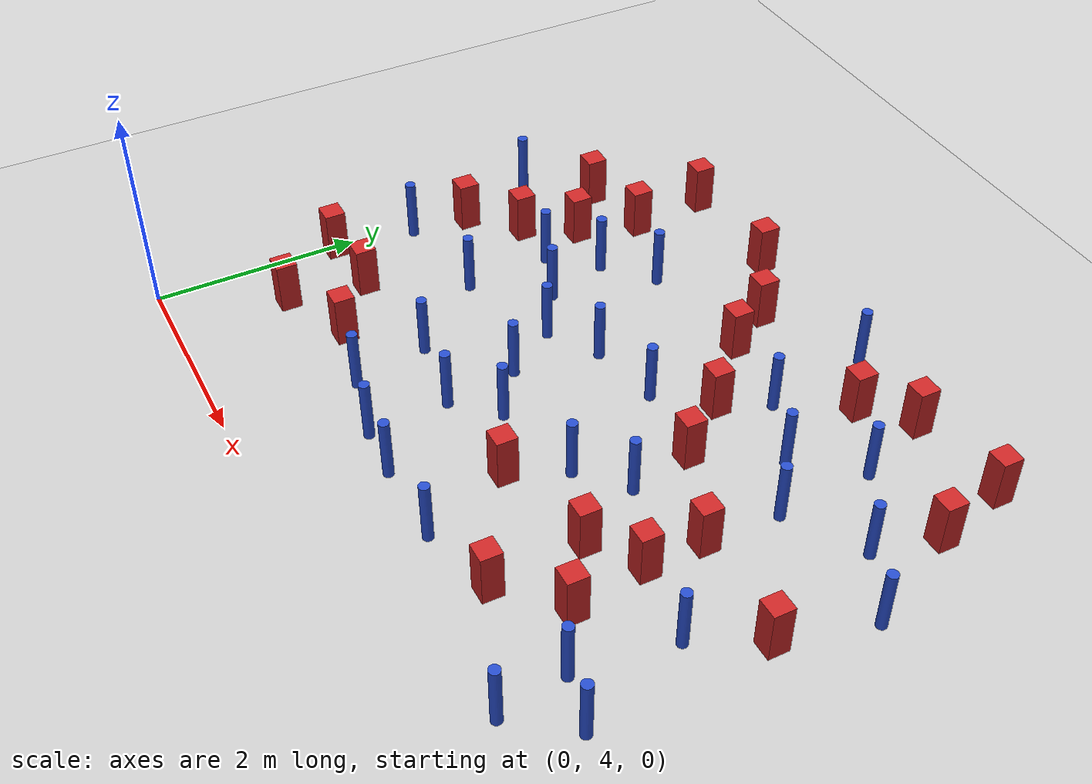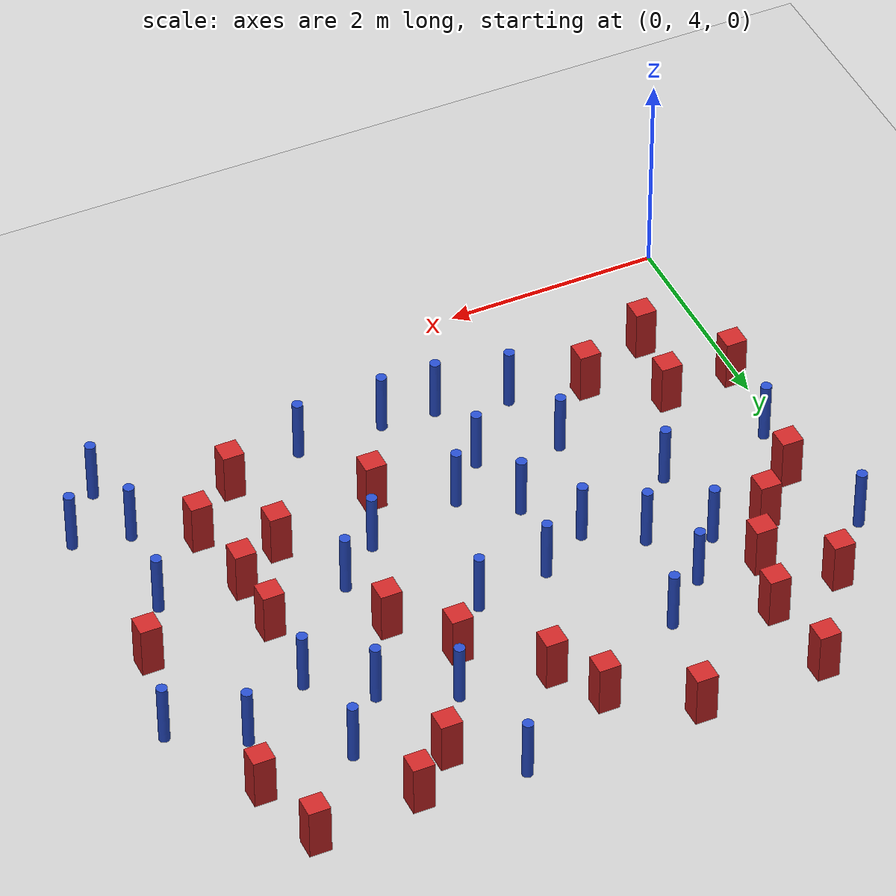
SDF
<sdf version="1.6">
 <world name="default">
  <model name="ground_plane">
   <static>1</static>
   <link name="link">
    <collision name="collision">
     <geometry><plane><normal>0 0 1</normal><size>100 100</size></plane></geometry>
     <surface><friction><ode><mu>100</mu><mu2>50</mu2></ode></friction></surface>
    </collision>
    <visual name="visual">
     <cast_shadows>0</cast_shadows>
     <geometry><plane><normal>0 0 1</normal><size>100 100</size></plane></geometry>
     <material>
      <ambient>1.0 1.0 1.0 1.0</ambient>
      <diffuse>0.8 0.8 0.8 1.0</diffuse>
      <specular>0.01 0.01 0.01 1.000000</specular>
     </material>
    </visual>
   </link>
  </model>
  <model name="pole_obstacle5">
   <static>true</static>
   <pose>3.9795930664 8.41636946074 -9.4761961606e-06 5.49618799729e-07 2.36310414e-07 -1.55090534824e-07</pose>
   <link name="link">
    <pose>0 0 0.3 0 -0 0</pose>
    <inertial>
     <mass>1</mass>
     <inertia><ixx>0.145833</ixx><ixy>0</ixy><ixz>0</ixz><iyy>0.145833</iyy><iyz>0</iyz><izz>0.125</izz></inertia>
    </inertial>
    <collision name="collision">
     <geometry><cylinder><radius>0.05</radius><length>.6</length></cylinder></geometry>
    </collision>
    <visual name="visual">
     <geometry><cylinder><radius>0.05</radius><length>.6</length></cylinder></geometry>
     <material>
      <script><name>Gazebo/Blue</name><uri>file://media/materials/scripts/gazebo.material</uri></script>
     </material>
    </visual>
   </link>
  </model>
  <model name="pole_obstacle6">
   <static>true</static>
   <pose>4.61907861726 8.1229352003 -9.47619616065e-06 5.49618799737e-07 2.36310414065e-07 -1.55090534796e-07</pose>
   <link name="link">
    <pose>0 0 0.3 0 -0 0</pose>
    <inertial>
     <mass>1</mass>
     <inertia><ixx>0.145833</ixx><ixy>0</ixy><ixz>0</ixz><iyy>0.145833</iyy><iyz>0</iyz><izz>0.125</izz></inertia>
    </inertial>
    <collision name="collision">
     <geometry><cylinder><radius>0.05</radius><length>.6</length></cylinder></geometry>
    </collision>
    <visual name="visual">
     <geometry><cylinder><radius>0.05</radius><length>.6</length></cylinder></geometry>
     <material>
      <script><name>Gazebo/Blue</name><uri>file://media/materials/scripts/gazebo.material</uri></script>
     </material>
    </visual>
   </link>
  </model>
  <model name="square_post_obstacle16">
   <static>true</static>
   <pose>4.78682053761 9.36860131413 -6.11067671241e-07 -5.50515727128e-06 -8.79689657224e-07 2.37013304536e-05</pose>
   <link name="link">
    <pose>0 0 0.25 0 -0 0</pose>
    <inertial>
     <mass>100</mass>
     <inertia>
      <ixx>0.166667</ixx>
      <ixy>0</ixy>
      <ixz>0</ixz>
      <iyy>0.166667</iyy>
      <iyz>0</iyz>
      <izz>0.166667</izz>
     </inertia>
    </inertial>
    <collision name="collision"><geometry><box><size>.2 .2 .5</size></box></geometry></collision>
    <visual name="visual">
     <geometry><box><size>.2 .2 .5</size></box></geometry>
     <material>
      <script><name>Gazebo/Red</name><uri>file://media/materials/scripts/gazebo.material</uri></script>
     </material>
    </visual>
   </link>
  </model>
  <model name="square_post_obstacle17">
   <static>true</static>
   <pose>0.948095992492 8.06252955084 -6.11067671241e-07 -5.50515727128e-06 -8.79689657224e-07 2.37013304536e-05</pose>
   <link name="link">
    <pose>0 0 0.25 0 -0 0</pose>
    <inertial>
     <mass>100</mass>
     <inertia>
      <ixx>0.166667</ixx>
      <ixy>0</ixy>
      <ixz>0</ixz>
      <iyy>0.166667</iyy>
      <iyz>0</iyz>
      <izz>0.166667</izz>
     </inertia>
    </inertial>
    <collision name="collision"><geometry><box><size>.2 .2 .5</size></box></geometry></collision>
    <visual name="visual">
     <geometry><box><size>.2 .2 .5</size></box></geometry>
     <material>
      <script><name>Gazebo/Red</name><uri>file://media/materials/scripts/gazebo.material</uri></script>
     </material>
    </visual>
   </link>
  </model>
  <model name="pole_obstacle23">
   <static>true</static>
   <pose>3.99625036072 5.07486670675 -9.47619616065e-06 5.49618799737e-07 2.36310414049e-07 -1.55090534808e-07</pose>
   <link name="link">
    <pose>0 0 0.3 0 -0 0</pose>
    <inertial>
     <mass>1</mass>
     <inertia><ixx>0.145833</ixx><ixy>0</ixy><ixz>0</ixz><iyy>0.145833</iyy><iyz>0</iyz><izz>0.125</izz></inertia>
    </inertial>
    <collision name="collision">
     <geometry><cylinder><radius>0.05</radius><length>.6</length></cylinder></geometry>
    </collision>
    <visual name="visual">
     <geometry><cylinder><radius>0.05</radius><length>.6</length></cylinder></geometry>
     <material>
      <script><name>Gazebo/Blue</name><uri>file://media/materials/scripts/gazebo.material</uri></script>
     </material>
    </visual>
   </link>
  </model>
  <model name="pole_obstacle28">
   <static>true</static>
   <pose>2.99901912875 6.23944280285 -9.47619616065e-06 5.49618799738e-07 2.3631041406e-07 -1.55090534801e-07</pose>
   <link name="link">
    <pose>0 0 0.3 0 -0 0</pose>
    <inertial>
     <mass>1</mass>
     <inertia><ixx>0.145833</ixx><ixy>0</ixy><ixz>0</ixz><iyy>0.145833</iyy><iyz>0</iyz><izz>0.125</izz></inertia>
    </inertial>
    <collision name="collision">
     <geometry><cylinder><radius>0.05</radius><length>.6</length></cylinder></geometry>
    </collision>
    <visual name="visual">
     <geometry><cylinder><radius>0.05</radius><length>.6</length></cylinder></geometry>
     <material>
      <script><name>Gazebo/Blue</name><uri>file://media/materials/scripts/gazebo.material</uri></script>
     </material>
    </visual>
   </link>
  </model>
  <model name="pole_obstacle43">
   <static>true</static>
   <pose>1.8658468753 5.97673860439 -9.47619616065e-06 5.49618799737e-07 2.36310414061e-07 -1.550905348e-07</pose>
   <link name="link">
    <pose>0 0 0.3 0 -0 0</pose>
    <inertial>
     <mass>1</mass>
     <inertia><ixx>0.145833</ixx><ixy>0</ixy><ixz>0</ixz><iyy>0.145833</iyy><iyz>0</iyz><izz>0.125</izz></inertia>
    </inertial>
    <collision name="collision">
     <geometry><cylinder><radius>0.05</radius><length>.6</length></cylinder></geometry>
    </collision>
    <visual name="visual">
     <geometry><cylinder><radius>0.05</radius><length>.6</length></cylinder></geometry>
     <material>
      <script><name>Gazebo/Blue</name><uri>file://media/materials/scripts/gazebo.material</uri></script>
     </material>
    </visual>
   </link>
  </model>
  <model name="pole_obstacle45">
   <static>true</static>
   <pose>5.11731528271 7.73372476212 -9.47619616065e-06 5.49618799737e-07 2.36310414037e-07 -1.55090534814e-07</pose>
   <link name="link">
    <pose>0 0 0.3 0 -0 0</pose>
    <inertial>
     <mass>1</mass>
     <inertia><ixx>0.145833</ixx><ixy>0</ixy><ixz>0</ixz><iyy>0.145833</iyy><iyz>0</iyz><izz>0.125</izz></inertia>
    </inertial>
    <collision name="collision">
     <geometry><cylinder><radius>0.05</radius><length>.6</length></cylinder></geometry>
    </collision>
    <visual name="visual">
     <geometry><cylinder><radius>0.05</radius><length>.6</length></cylinder></geometry>
     <material>
      <script><name>Gazebo/Blue</name><uri>file://media/materials/scripts/gazebo.material</uri></script>
     </material>
    </visual>
   </link>
  </model>
  <model name="square_post_obstacle37">
   <static>true</static>
   <pose>1.12506290742 8.65551041633 -6.11067671241e-07 -5.50515727128e-06 -8.79689657224e-07 2.37013304536e-05</pose>
   <link name="link">
    <pose>0 0 0.25 0 -0 0</pose>
    <inertial>
     <mass>100</mass>
     <inertia>
      <ixx>0.166667</ixx>
      <ixy>0</ixy>
      <ixz>0</ixz>
      <iyy>0.166667</iyy>
      <iyz>0</iyz>
      <izz>0.166667</izz>
     </inertia>
    </inertial>
    <collision name="collision"><geometry><box><size>.2 .2 .5</size></box></geometry></collision>
    <visual name="visual">
     <geometry><box><size>.2 .2 .5</size></box></geometry>
     <material>
      <script><name>Gazebo/Red</name><uri>file://media/materials/scripts/gazebo.material</uri></script>
     </material>
    </visual>
   </link>
  </model>
  <model name="square_post_obstacle39">
   <static>true</static>
   <pose>0.746380379978 5.84745701306 -6.11067671241e-07 -5.50515727128e-06 -8.79689657224e-07 2.37013304536e-05</pose>
   <link name="link">
    <pose>0 0 0.25 0 -0 0</pose>
    <inertial>
     <mass>100</mass>
     <inertia>
      <ixx>0.166667</ixx>
      <ixy>0</ixy>
      <ixz>0</ixz>
      <iyy>0.166667</iyy>
      <iyz>0</iyz>
      <izz>0.166667</izz>
     </inertia>
    </inertial>
    <collision name="collision"><geometry><box><size>.2 .2 .5</size></box></geometry></collision>
    <visual name="visual">
     <geometry><box><size>.2 .2 .5</size></box></geometry>
     <material>
      <script><name>Gazebo/Red</name><uri>file://media/materials/scripts/gazebo.material</uri></script>
     </material>
    </visual>
   </link>
  </model>
  <model name="pole_obstacle50">
   <static>true</static>
   <pose>5.79605691347 8.14460460266 -9.47619616065e-06 5.49618799737e-07 2.36310414065e-07 -1.55090534796e-07</pose>
   <link name="link">
    <pose>0 0 0.3 0 -0 0</pose>
    <inertial>
     <mass>1</mass>
     <inertia><ixx>0.145833</ixx><ixy>0</ixy><ixz>0</ixz><iyy>0.145833</iyy><iyz>0</iyz><izz>0.125</izz></inertia>
    </inertial>
    <collision name="collision">
     <geometry><cylinder><radius>0.05</radius><length>.6</length></cylinder></geometry>
    </collision>
    <visual name="visual">
     <geometry><cylinder><radius>0.05</radius><length>.6</length></cylinder></geometry>
     <material>
      <script><name>Gazebo/Blue</name><uri>file://media/materials/scripts/gazebo.material</uri></script>
     </material>
    </visual>
   </link>
  </model>
  <model name="pole_obstacle53">
   <static>true</static>
   <pose>5.86750140877 6.35401192415 -9.47619616065e-06 5.49618799737e-07 2.36310414037e-07 -1.55090534814e-07</pose>
   <link name="link">
    <pose>0 0 0.3 0 -0 0</pose>
    <inertial>
     <mass>1</mass>
     <inertia><ixx>0.145833</ixx><ixy>0</ixy><ixz>0</ixz><iyy>0.145833</iyy><iyz>0</iyz><izz>0.125</izz></inertia>
    </inertial>
    <collision name="collision">
     <geometry><cylinder><radius>0.05</radius><length>.6</length></cylinder></geometry>
    </collision>
    <visual name="visual">
     <geometry><cylinder><radius>0.05</radius><length>.6</length></cylinder></geometry>
     <material>
      <script><name>Gazebo/Blue</name><uri>file://media/materials/scripts/gazebo.material</uri></script>
     </material>
    </visual>
   </link>
  </model>
  <model name="square_post_obstacle50">
   <static>true</static>
   <pose>6.19929380088 6.94378027738 -6.11067671241e-07 -5.50515727128e-06 -8.79689657224e-07 2.37013304536e-05</pose>
   <link name="link">
    <pose>0 0 0.25 0 -0 0</pose>
    <inertial>
     <mass>100</mass>
     <inertia>
      <ixx>0.166667</ixx>
      <ixy>0</ixy>
      <ixz>0</ixz>
      <iyy>0.166667</iyy>
      <iyz>0</iyz>
      <izz>0.166667</izz>
     </inertia>
    </inertial>
    <collision name="collision"><geometry><box><size>.2 .2 .5</size></box></geometry></collision>
    <visual name="visual">
     <geometry><box><size>.2 .2 .5</size></box></geometry>
     <material>
      <script><name>Gazebo/Red</name><uri>file://media/materials/scripts/gazebo.material</uri></script>
     </material>
    </visual>
   </link>
  </model>
  <model name="pole_obstacle67">
   <static>true</static>
   <pose>2.01881113388 5.24629547799 -9.47619616065e-06 5.49618799737e-07 2.36310414059e-07 -1.55090534802e-07</pose>
   <link name="link">
    <pose>0 0 0.3 0 -0 0</pose>
    <inertial>
     <mass>1</mass>
     <inertia><ixx>0.145833</ixx><ixy>0</ixy><ixz>0</ixz><iyy>0.145833</iyy><iyz>0</iyz><izz>0.125</izz></inertia>
    </inertial>
    <collision name="collision">
     <geometry><cylinder><radius>0.05</radius><length>.6</length></cylinder></geometry>
    </collision>
    <visual name="visual">
     <geometry><cylinder><radius>0.05</radius><length>.6</length></cylinder></geometry>
     <material>
      <script><name>Gazebo/Blue</name><uri>file://media/materials/scripts/gazebo.material</uri></script>
     </material>
    </visual>
   </link>
  </model>
  <model name="pole_obstacle68">
   <static>true</static>
   <pose>-0.0744887219912 7.95849065954 -9.47619616065e-06 5.49618799737e-07 2.36310414052e-07 -1.55090534804e-07</pose>
   <link name="link">
    <pose>0 0 0.3 0 -0 0</pose>
    <inertial>
     <mass>1</mass>
     <inertia><ixx>0.145833</ixx><ixy>0</ixy><ixz>0</ixz><iyy>0.145833</iyy><iyz>0</iyz><izz>0.125</izz></inertia>
    </inertial>
    <collision name="collision">
     <geometry><cylinder><radius>0.05</radius><length>.6</length></cylinder></geometry>
    </collision>
    <visual name="visual">
     <geometry><cylinder><radius>0.05</radius><length>.6</length></cylinder></geometry>
     <material>
      <script><name>Gazebo/Blue</name><uri>file://media/materials/scripts/gazebo.material</uri></script>
     </material>
    </visual>
   </link>
  </model>
  <model name="square_post_obstacle57">
   <static>true</static>
   <pose>0.075081018394 5.7961777047 -6.11067671241e-07 -5.50515727128e-06 -8.79689657224e-07 2.37013304536e-05</pose>
   <link name="link">
    <pose>0 0 0.25 0 -0 0</pose>
    <inertial>
     <mass>100</mass>
     <inertia>
      <ixx>0.166667</ixx>
      <ixy>0</ixy>
      <ixz>0</ixz>
      <iyy>0.166667</iyy>
      <iyz>0</iyz>
      <izz>0.166667</izz>
     </inertia>
    </inertial>
    <collision name="collision"><geometry><box><size>.2 .2 .5</size></box></geometry></collision>
    <visual name="visual">
     <geometry><box><size>.2 .2 .5</size></box></geometry>
     <material>
      <script><name>Gazebo/Red</name><uri>file://media/materials/scripts/gazebo.material</uri></script>
     </material>
    </visual>
   </link>
  </model>
  <model name="square_post_obstacle62">
   <static>true</static>
   <pose>3.17335032781 8.53009061244 -6.11067671241e-07 -5.50515727128e-06 -8.79689657224e-07 2.37013304536e-05</pose>
   <link name="link">
    <pose>0 0 0.25 0 -0 0</pose>
    <inertial>
     <mass>100</mass>
     <inertia>
      <ixx>0.166667</ixx>
      <ixy>0</ixy>
      <ixz>0</ixz>
      <iyy>0.166667</iyy>
      <iyz>0</iyz>
      <izz>0.166667</izz>
     </inertia>
    </inertial>
    <collision name="collision"><geometry><box><size>.2 .2 .5</size></box></geometry></collision>
    <visual name="visual">
     <geometry><box><size>.2 .2 .5</size></box></geometry>
     <material>
      <script><name>Gazebo/Red</name><uri>file://media/materials/scripts/gazebo.material</uri></script>
     </material>
    </visual>
   </link>
  </model>
  <model name="pole_obstacle73">
   <static>true</static>
   <pose>3.37304804578 7.50839836214 -9.47619616065e-06 5.49618799738e-07 2.3631041406e-07 -1.55090534801e-07</pose>
   <link name="link">
    <pose>0 0 0.3 0 -0 0</pose>
    <inertial>
     <mass>1</mass>
     <inertia><ixx>0.145833</ixx><ixy>0</ixy><ixz>0</ixz><iyy>0.145833</iyy><iyz>0</iyz><izz>0.125</izz></inertia>
    </inertial>
    <collision name="collision">
     <geometry><cylinder><radius>0.05</radius><length>.6</length></cylinder></geometry>
    </collision>
    <visual name="visual">
     <geometry><cylinder><radius>0.05</radius><length>.6</length></cylinder></geometry>
     <material>
      <script><name>Gazebo/Blue</name><uri>file://media/materials/scripts/gazebo.material</uri></script>
     </material>
    </visual>
   </link>
  </model>
  <model name="square_post_obstacle65">
   <static>true</static>
   <pose>1.33356013563 5.39913587888 -6.11067671241e-07 -5.50515727128e-06 -8.79689657224e-07 2.37013304536e-05</pose>
   <link name="link">
    <pose>0 0 0.25 0 -0 0</pose>
    <inertial>
     <mass>100</mass>
     <inertia>
      <ixx>0.166667</ixx>
      <ixy>0</ixy>
      <ixz>0</ixz>
      <iyy>0.166667</iyy>
      <iyz>0</iyz>
      <izz>0.166667</izz>
     </inertia>
    </inertial>
    <collision name="collision"><geometry><box><size>.2 .2 .5</size></box></geometry></collision>
    <visual name="visual">
     <geometry><box><size>.2 .2 .5</size></box></geometry>
     <material>
      <script><name>Gazebo/Red</name><uri>file://media/materials/scripts/gazebo.material</uri></script>
     </material>
    </visual>
   </link>
  </model>
  <model name="pole_obstacle78">
   <static>true</static>
   <pose>3.89709581932 6.44335879864 -9.47619616065e-06 5.49618799738e-07 2.3631041406e-07 -1.55090534801e-07</pose>
   <link name="link">
    <pose>0 0 0.3 0 -0 0</pose>
    <inertial>
     <mass>1</mass>
     <inertia><ixx>0.145833</ixx><ixy>0</ixy><ixz>0</ixz><iyy>0.145833</iyy><iyz>0</iyz><izz>0.125</izz></inertia>
    </inertial>
    <collision name="collision">
     <geometry><cylinder><radius>0.05</radius><length>.6</length></cylinder></geometry>
    </collision>
    <visual name="visual">
     <geometry><cylinder><radius>0.05</radius><length>.6</length></cylinder></geometry>
     <material>
      <script><name>Gazebo/Blue</name><uri>file://media/materials/scripts/gazebo.material</uri></script>
     </material>
    </visual>
   </link>
  </model>
  <model name="pole_obstacle79">
   <static>true</static>
   <pose>1.71082119337 7.38262264286 -9.47619616065e-06 5.49618799737e-07 2.36310414061e-07 -1.550905348e-07</pose>
   <link name="link">
    <pose>0 0 0.3 0 -0 0</pose>
    <inertial>
     <mass>1</mass>
     <inertia><ixx>0.145833</ixx><ixy>0</ixy><ixz>0</ixz><iyy>0.145833</iyy><iyz>0</iyz><izz>0.125</izz></inertia>
    </inertial>
    <collision name="collision">
     <geometry><cylinder><radius>0.05</radius><length>.6</length></cylinder></geometry>
    </collision>
    <visual name="visual">
     <geometry><cylinder><radius>0.05</radius><length>.6</length></cylinder></geometry>
     <material>
      <script><name>Gazebo/Blue</name><uri>file://media/materials/scripts/gazebo.material</uri></script>
     </material>
    </visual>
   </link>
  </model>
  <model name="pole_obstacle96">
   <static>true</static>
   <pose>5.74327063556 5.43823994087 -9.47619616065e-06 5.49618799737e-07 2.36310414037e-07 -1.55090534814e-07</pose>
   <link name="link">
    <pose>0 0 0.3 0 -0 0</pose>
    <inertial>
     <mass>1</mass>
     <inertia><ixx>0.145833</ixx><ixy>0</ixy><ixz>0</ixz><iyy>0.145833</iyy><iyz>0</iyz><izz>0.125</izz></inertia>
    </inertial>
    <collision name="collision">
     <geometry><cylinder><radius>0.05</radius><length>.6</length></cylinder></geometry>
    </collision>
    <visual name="visual">
     <geometry><cylinder><radius>0.05</radius><length>.6</length></cylinder></geometry>
     <material>
      <script><name>Gazebo/Blue</name><uri>file://media/materials/scripts/gazebo.material</uri></script>
     </material>
    </visual>
   </link>
  </model>
  <model name="pole_obstacle100">
   <static>true</static>
   <pose>6.2513042674 5.3222553569 -9.47619616065e-06 5.49618799737e-07 2.36310414037e-07 -1.55090534814e-07</pose>
   <link name="link">
    <pose>0 0 0.3 0 -0 0</pose>
    <inertial>
     <mass>1</mass>
     <inertia><ixx>0.145833</ixx><ixy>0</ixy><ixz>0</ixz><iyy>0.145833</iyy><iyz>0</iyz><izz>0.125</izz></inertia>
    </inertial>
    <collision name="collision">
     <geometry><cylinder><radius>0.05</radius><length>.6</length></cylinder></geometry>
    </collision>
    <visual name="visual">
     <geometry><cylinder><radius>0.05</radius><length>.6</length></cylinder></geometry>
     <material>
      <script><name>Gazebo/Blue</name><uri>file://media/materials/scripts/gazebo.material</uri></script>
     </material>
    </visual>
   </link>
  </model>
  <model name="pole_obstacle101">
   <static>true</static>
   <pose>2.6684589405 7.37451619349 -9.47619616065e-06 5.49618799738e-07 2.3631041406e-07 -1.55090534801e-07</pose>
   <link name="link">
    <pose>0 0 0.3 0 -0 0</pose>
    <inertial>
     <mass>1</mass>
     <inertia><ixx>0.145833</ixx><ixy>0</ixy><ixz>0</ixz><iyy>0.145833</iyy><iyz>0</iyz><izz>0.125</izz></inertia>
    </inertial>
    <collision name="collision">
     <geometry><cylinder><radius>0.05</radius><length>.6</length></cylinder></geometry>
    </collision>
    <visual name="visual">
     <geometry><cylinder><radius>0.05</radius><length>.6</length></cylinder></geometry>
     <material>
      <script><name>Gazebo/Blue</name><uri>file://media/materials/scripts/gazebo.material</uri></script>
     </material>
    </visual>
   </link>
  </model>
  <model name="square_post_obstacle93">
   <static>true</static>
   <pose>0.227520575556 7.16640442078 -6.11067671241e-07 -5.50515727128e-06 -8.79689657224e-07 2.37013304536e-05</pose>
   <link name="link">
    <pose>0 0 0.25 0 -0 0</pose>
    <inertial>
     <mass>100</mass>
     <inertia>
      <ixx>0.166667</ixx>
      <ixy>0</ixy>
      <ixz>0</ixz>
      <iyy>0.166667</iyy>
      <iyz>0</iyz>
      <izz>0.166667</izz>
     </inertia>
    </inertial>
    <collision name="collision"><geometry><box><size>.2 .2 .5</size></box></geometry></collision>
    <visual name="visual">
     <geometry><box><size>.2 .2 .5</size></box></geometry>
     <material>
      <script><name>Gazebo/Red</name><uri>file://media/materials/scripts/gazebo.material</uri></script>
     </material>
    </visual>
   </link>
  </model>
  <model name="pole_obstacle106">
   <static>true</static>
   <pose>4.31202263244 6.80714378854 -9.47619616065e-06 5.49618799737e-07 2.36310414037e-07 -1.55090534814e-07</pose>
   <link name="link">
    <pose>0 0 0.3 0 -0 0</pose>
    <inertial>
     <mass>1</mass>
     <inertia><ixx>0.145833</ixx><ixy>0</ixy><ixz>0</ixz><iyy>0.145833</iyy><iyz>0</iyz><izz>0.125</izz></inertia>
    </inertial>
    <collision name="collision">
     <geometry><cylinder><radius>0.05</radius><length>.6</length></cylinder></geometry>
    </collision>
    <visual name="visual">
     <geometry><cylinder><radius>0.05</radius><length>.6</length></cylinder></geometry>
     <material>
      <script><name>Gazebo/Blue</name><uri>file://media/materials/scripts/gazebo.material</uri></script>
     </material>
    </visual>
   </link>
  </model>
  <model name="square_post_obstacle107">
   <static>true</static>
   <pose>2.21902981411 9.43821137238 -6.11067671241e-07 -5.50515727128e-06 -8.79689657224e-07 2.37013304536e-05</pose>
   <link name="link">
    <pose>0 0 0.25 0 -0 0</pose>
    <inertial>
     <mass>100</mass>
     <inertia>
      <ixx>0.166667</ixx>
      <ixy>0</ixy>
      <ixz>0</ixz>
      <iyy>0.166667</iyy>
      <iyz>0</iyz>
      <izz>0.166667</izz>
     </inertia>
    </inertial>
    <collision name="collision"><geometry><box><size>.2 .2 .5</size></box></geometry></collision>
    <visual name="visual">
     <geometry><box><size>.2 .2 .5</size></box></geometry>
     <material>
      <script><name>Gazebo/Red</name><uri>file://media/materials/scripts/gazebo.material</uri></script>
     </material>
    </visual>
   </link>
  </model>
  <model name="square_post_obstacle119">
   <static>true</static>
   <pose>0.628961718803 5.09849741362 -6.11067671241e-07 -5.50515727128e-06 -8.79689657224e-07 2.37013304536e-05</pose>
   <link name="link">
    <pose>0 0 0.25 0 -0 0</pose>
    <inertial>
     <mass>100</mass>
     <inertia>
      <ixx>0.166667</ixx>
      <ixy>0</ixy>
      <ixz>0</ixz>
      <iyy>0.166667</iyy>
      <iyz>0</iyz>
      <izz>0.166667</izz>
     </inertia>
    </inertial>
    <collision name="collision"><geometry><box><size>.2 .2 .5</size></box></geometry></collision>
    <visual name="visual">
     <geometry><box><size>.2 .2 .5</size></box></geometry>
     <material>
      <script><name>Gazebo/Red</name><uri>file://media/materials/scripts/gazebo.material</uri></script>
     </material>
    </visual>
   </link>
  </model>
  <model name="pole_obstacle128">
   <static>true</static>
   <pose>2.67643419056 5.09727257104 -9.47619616065e-06 5.49618799738e-07 2.3631041406e-07 -1.55090534801e-07</pose>
   <link name="link">
    <pose>0 0 0.3 0 -0 0</pose>
    <inertial>
     <mass>1</mass>
     <inertia><ixx>0.145833</ixx><ixy>0</ixy><ixz>0</ixz><iyy>0.145833</iyy><iyz>0</iyz><izz>0.125</izz></inertia>
    </inertial>
    <collision name="collision">
     <geometry><cylinder><radius>0.05</radius><length>.6</length></cylinder></geometry>
    </collision>
    <visual name="visual">
     <geometry><cylinder><radius>0.05</radius><length>.6</length></cylinder></geometry>
     <material>
      <script><name>Gazebo/Blue</name><uri>file://media/materials/scripts/gazebo.material</uri></script>
     </material>
    </visual>
   </link>
  </model>
  <model name="pole_obstacle129">
   <static>true</static>
   <pose>3.83881630726 9.44985290274 -9.4761961606e-06 5.49618799729e-07 2.36310414e-07 -1.55090534824e-07</pose>
   <link name="link">
    <pose>0 0 0.3 0 -0 0</pose>
    <inertial>
     <mass>1</mass>
     <inertia><ixx>0.145833</ixx><ixy>0</ixy><ixz>0</ixz><iyy>0.145833</iyy><iyz>0</iyz><izz>0.125</izz></inertia>
    </inertial>
    <collision name="collision">
     <geometry><cylinder><radius>0.05</radius><length>.6</length></cylinder></geometry>
    </collision>
    <visual name="visual">
     <geometry><cylinder><radius>0.05</radius><length>.6</length></cylinder></geometry>
     <material>
      <script><name>Gazebo/Blue</name><uri>file://media/materials/scripts/gazebo.material</uri></script>
     </material>
    </visual>
   </link>
  </model>
  <model name="pole_obstacle132">
   <static>true</static>
   <pose>1.16931020479 7.59203667418 -9.47619616065e-06 5.49618799737e-07 2.36310414061e-07 -1.550905348e-07</pose>
   <link name="link">
    <pose>0 0 0.3 0 -0 0</pose>
    <inertial>
     <mass>1</mass>
     <inertia><ixx>0.145833</ixx><ixy>0</ixy><ixz>0</ixz><iyy>0.145833</iyy><iyz>0</iyz><izz>0.125</izz></inertia>
    </inertial>
    <collision name="collision">
     <geometry><cylinder><radius>0.05</radius><length>.6</length></cylinder></geometry>
    </collision>
    <visual name="visual">
     <geometry><cylinder><radius>0.05</radius><length>.6</length></cylinder></geometry>
     <material>
      <script><name>Gazebo/Blue</name><uri>file://media/materials/scripts/gazebo.material</uri></script>
     </material>
    </visual>
   </link>
  </model>
  <model name="pole_obstacle135">
   <static>true</static>
   <pose>1.96302050742 8.39991894854 -9.47619616065e-06 5.49618799737e-07 2.3631041405e-07 -1.55090534805e-07</pose>
   <link name="link">
    <pose>0 0 0.3 0 -0 0</pose>
    <inertial>
     <mass>1</mass>
     <inertia><ixx>0.145833</ixx><ixy>0</ixy><ixz>0</ixz><iyy>0.145833</iyy><iyz>0</iyz><izz>0.125</izz></inertia>
    </inertial>
    <collision name="collision">
     <geometry><cylinder><radius>0.05</radius><length>.6</length></cylinder></geometry>
    </collision>
    <visual name="visual">
     <geometry><cylinder><radius>0.05</radius><length>.6</length></cylinder></geometry>
     <material>
      <script><name>Gazebo/Blue</name><uri>file://media/materials/scripts/gazebo.material</uri></script>
     </material>
    </visual>
   </link>
  </model>
  <model name="pole_obstacle140">
   <static>true</static>
   <pose>1.21479561049 6.74006149046 -9.47619616065e-06 5.49618799737e-07 2.36310414061e-07 -1.550905348e-07</pose>
   <link name="link">
    <pose>0 0 0.3 0 -0 0</pose>
    <inertial>
     <mass>1</mass>
     <inertia><ixx>0.145833</ixx><ixy>0</ixy><ixz>0</ixz><iyy>0.145833</iyy><iyz>0</iyz><izz>0.125</izz></inertia>
    </inertial>
    <collision name="collision">
     <geometry><cylinder><radius>0.05</radius><length>.6</length></cylinder></geometry>
    </collision>
    <visual name="visual">
     <geometry><cylinder><radius>0.05</radius><length>.6</length></cylinder></geometry>
     <material>
      <script><name>Gazebo/Blue</name><uri>file://media/materials/scripts/gazebo.material</uri></script>
     </material>
    </visual>
   </link>
  </model>
  <model name="square_post_obstacle141">
   <static>true</static>
   <pose>1.05243503251 9.42416832468 -6.11067671241e-07 -5.50515727128e-06 -8.79689657224e-07 2.37013304536e-05</pose>
   <link name="link">
    <pose>0 0 0.25 0 -0 0</pose>
    <inertial>
     <mass>100</mass>
     <inertia>
      <ixx>0.166667</ixx>
      <ixy>0</ixy>
      <ixz>0</ixz>
      <iyy>0.166667</iyy>
      <iyz>0</iyz>
      <izz>0.166667</izz>
     </inertia>
    </inertial>
    <collision name="collision"><geometry><box><size>.2 .2 .5</size></box></geometry></collision>
    <visual name="visual">
     <geometry><box><size>.2 .2 .5</size></box></geometry>
     <material>
      <script><name>Gazebo/Red</name><uri>file://media/materials/scripts/gazebo.material</uri></script>
     </material>
    </visual>
   </link>
  </model>
  <model name="pole_obstacle149">
   <static>true</static>
   <pose>6.41525727291 7.80218007561 -9.47619616065e-06 5.49618799737e-07 2.36310414037e-07 -1.55090534814e-07</pose>
   <link name="link">
    <pose>0 0 0.3 0 -0 0</pose>
    <inertial>
     <mass>1</mass>
     <inertia><ixx>0.145833</ixx><ixy>0</ixy><ixz>0</ixz><iyy>0.145833</iyy><iyz>0</iyz><izz>0.125</izz></inertia>
    </inertial>
    <collision name="collision">
     <geometry><cylinder><radius>0.05</radius><length>.6</length></cylinder></geometry>
    </collision>
    <visual name="visual">
     <geometry><cylinder><radius>0.05</radius><length>.6</length></cylinder></geometry>
     <material>
      <script><name>Gazebo/Blue</name><uri>file://media/materials/scripts/gazebo.material</uri></script>
     </material>
    </visual>
   </link>
  </model>
  <model name="square_post_obstacle149">
   <static>true</static>
   <pose>3.66135231322 5.9166173033 -6.11067671241e-07 -5.50515727128e-06 -8.79689657224e-07 2.37013304536e-05</pose>
   <link name="link">
    <pose>0 0 0.25 0 -0 0</pose>
    <inertial>
     <mass>100</mass>
     <inertia>
      <ixx>0.166667</ixx>
      <ixy>0</ixy>
      <ixz>0</ixz>
      <iyy>0.166667</iyy>
      <iyz>0</iyz>
      <izz>0.166667</izz>
     </inertia>
    </inertial>
    <collision name="collision"><geometry><box><size>.2 .2 .5</size></box></geometry></collision>
    <visual name="visual">
     <geometry><box><size>.2 .2 .5</size></box></geometry>
     <material>
      <script><name>Gazebo/Red</name><uri>file://media/materials/scripts/gazebo.material</uri></script>
     </material>
    </visual>
   </link>
  </model>
  <model name="square_post_obstacle151">
   <static>true</static>
   <pose>5.94100396728 8.74520630121 -6.11067671241e-07 -5.50515727128e-06 -8.79689657224e-07 2.37013304536e-05</pose>
   <link name="link">
    <pose>0 0 0.25 0 -0 0</pose>
    <inertial>
     <mass>100</mass>
     <inertia>
      <ixx>0.166667</ixx>
      <ixy>0</ixy>
      <ixz>0</ixz>
      <iyy>0.166667</iyy>
      <iyz>0</iyz>
      <izz>0.166667</izz>
     </inertia>
    </inertial>
    <collision name="collision"><geometry><box><size>.2 .2 .5</size></box></geometry></collision>
    <visual name="visual">
     <geometry><box><size>.2 .2 .5</size></box></geometry>
     <material>
      <script><name>Gazebo/Red</name><uri>file://media/materials/scripts/gazebo.material</uri></script>
     </material>
    </visual>
   </link>
  </model>
  <model name="pole_obstacle156">
   <static>true</static>
   <pose>5.06948551995 8.66651634203 -9.47619616065e-06 5.49618799737e-07 2.36310414065e-07 -1.55090534796e-07</pose>
   <link name="link">
    <pose>0 0 0.3 0 -0 0</pose>
    <inertial>
     <mass>1</mass>
     <inertia><ixx>0.145833</ixx><ixy>0</ixy><ixz>0</ixz><iyy>0.145833</iyy><iyz>0</iyz><izz>0.125</izz></inertia>
    </inertial>
    <collision name="collision">
     <geometry><cylinder><radius>0.05</radius><length>.6</length></cylinder></geometry>
    </collision>
    <visual name="visual">
     <geometry><cylinder><radius>0.05</radius><length>.6</length></cylinder></geometry>
     <material>
      <script><name>Gazebo/Blue</name><uri>file://media/materials/scripts/gazebo.material</uri></script>
     </material>
    </visual>
   </link>
  </model>
  <model name="square_post_obstacle152">
   <static>true</static>
   <pose>3.77513540662 7.9475273359 -6.11067671241e-07 -5.50515727128e-06 -8.79689657224e-07 2.37013304536e-05</pose>
   <link name="link">
    <pose>0 0 0.25 0 -0 0</pose>
    <inertial>
     <mass>100</mass>
     <inertia>
      <ixx>0.166667</ixx>
      <ixy>0</ixy>
      <ixz>0</ixz>
      <iyy>0.166667</iyy>
      <iyz>0</iyz>
      <izz>0.166667</izz>
     </inertia>
    </inertial>
    <collision name="collision"><geometry><box><size>.2 .2 .5</size></box></geometry></collision>
    <visual name="visual">
     <geometry><box><size>.2 .2 .5</size></box></geometry>
     <material>
      <script><name>Gazebo/Red</name><uri>file://media/materials/scripts/gazebo.material</uri></script>
     </material>
    </visual>
   </link>
  </model>
  <model name="pole_obstacle159">
   <static>true</static>
   <pose>1.52467477993 8.01280090331 -9.47619616065e-06 5.49618799737e-07 2.36310414068e-07 -1.55090534795e-07</pose>
   <link name="link">
    <pose>0 0 0.3 0 -0 0</pose>
    <inertial>
     <mass>1</mass>
     <inertia><ixx>0.145833</ixx><ixy>0</ixy><ixz>0</ixz><iyy>0.145833</iyy><iyz>0</iyz><izz>0.125</izz></inertia>
    </inertial>
    <collision name="collision">
     <geometry><cylinder><radius>0.05</radius><length>.6</length></cylinder></geometry>
    </collision>
    <visual name="visual">
     <geometry><cylinder><radius>0.05</radius><length>.6</length></cylinder></geometry>
     <material>
      <script><name>Gazebo/Blue</name><uri>file://media/materials/scripts/gazebo.material</uri></script>
     </material>
    </visual>
   </link>
  </model>
  <model name="pole_obstacle162">
   <static>true</static>
   <pose>2.63110538232 5.8647630807 -9.47619616065e-06 5.49618799738e-07 2.3631041406e-07 -1.55090534801e-07</pose>
   <link name="link">
    <pose>0 0 0.3 0 -0 0</pose>
    <inertial>
     <mass>1</mass>
     <inertia><ixx>0.145833</ixx><ixy>0</ixy><ixz>0</ixz><iyy>0.145833</iyy><iyz>0</iyz><izz>0.125</izz></inertia>
    </inertial>
    <collision name="collision">
     <geometry><cylinder><radius>0.05</radius><length>.6</length></cylinder></geometry>
    </collision>
    <visual name="visual">
     <geometry><cylinder><radius>0.05</radius><length>.6</length></cylinder></geometry>
     <material>
      <script><name>Gazebo/Blue</name><uri>file://media/materials/scripts/gazebo.material</uri></script>
     </material>
    </visual>
   </link>
  </model>
  <model name="square_post_obstacle158">
   <static>true</static>
   <pose>0.431924122259 8.51387924564 -6.11067671241e-07 -5.50515727128e-06 -8.79689657224e-07 2.37013304536e-05</pose>
   <link name="link">
    <pose>0 0 0.25 0 -0 0</pose>
    <inertial>
     <mass>100</mass>
     <inertia>
      <ixx>0.166667</ixx>
      <ixy>0</ixy>
      <ixz>0</ixz>
      <iyy>0.166667</iyy>
      <iyz>0</iyz>
      <izz>0.166667</izz>
     </inertia>
    </inertial>
    <collision name="collision"><geometry><box><size>.2 .2 .5</size></box></geometry></collision>
    <visual name="visual">
     <geometry><box><size>.2 .2 .5</size></box></geometry>
     <material>
      <script><name>Gazebo/Red</name><uri>file://media/materials/scripts/gazebo.material</uri></script>
     </material>
    </visual>
   </link>
  </model>
  <model name="square_post_obstacle160">
   <static>true</static>
   <pose>4.37537470823 9.02222981482 -6.11067671241e-07 -5.50515727128e-06 -8.79689657224e-07 2.37013304536e-05</pose>
   <link name="link">
    <pose>0 0 0.25 0 -0 0</pose>
    <inertial>
     <mass>100</mass>
     <inertia>
      <ixx>0.166667</ixx>
      <ixy>0</ixy>
      <ixz>0</ixz>
      <iyy>0.166667</iyy>
      <iyz>0</iyz>
      <izz>0.166667</izz>
     </inertia>
    </inertial>
    <collision name="collision"><geometry><box><size>.2 .2 .5</size></box></geometry></collision>
    <visual name="visual">
     <geometry><box><size>.2 .2 .5</size></box></geometry>
     <material>
      <script><name>Gazebo/Red</name><uri>file://media/materials/scripts/gazebo.material</uri></script>
     </material>
    </visual>
   </link>
  </model>
  <model name="square_post_obstacle161">
   <static>true</static>
   <pose>5.23425286945 5.74595584657 -6.11067671241e-07 -5.50515727128e-06 -8.79689657224e-07 2.37013304536e-05</pose>
   <link name="link">
    <pose>0 0 0.25 0 -0 0</pose>
    <inertial>
     <mass>100</mass>
     <inertia>
      <ixx>0.166667</ixx>
      <ixy>0</ixy>
      <ixz>0</ixz>
      <iyy>0.166667</iyy>
      <iyz>0</iyz>
      <izz>0.166667</izz>
     </inertia>
    </inertial>
    <collision name="collision"><geometry><box><size>.2 .2 .5</size></box></geometry></collision>
    <visual name="visual">
     <geometry><box><size>.2 .2 .5</size></box></geometry>
     <material>
      <script><name>Gazebo/Red</name><uri>file://media/materials/scripts/gazebo.material</uri></script>
     </material>
    </visual>
   </link>
  </model>
  <model name="square_post_obstacle174">
   <static>true</static>
   <pose>5.12421578385 6.45281566139 -6.11067671241e-07 -5.50515727128e-06 -8.79689657224e-07 2.37013304536e-05</pose>
   <link name="link">
    <pose>0 0 0.25 0 -0 0</pose>
    <inertial>
     <mass>100</mass>
     <inertia>
      <ixx>0.166667</ixx>
      <ixy>0</ixy>
      <ixz>0</ixz>
      <iyy>0.166667</iyy>
      <iyz>0</iyz>
      <izz>0.166667</izz>
     </inertia>
    </inertial>
    <collision name="collision"><geometry><box><size>.2 .2 .5</size></box></geometry></collision>
    <visual name="visual">
     <geometry><box><size>.2 .2 .5</size></box></geometry>
     <material>
      <script><name>Gazebo/Red</name><uri>file://media/materials/scripts/gazebo.material</uri></script>
     </material>
    </visual>
   </link>
  </model>
  <model name="pole_obstacle177">
   <static>true</static>
   <pose>2.52911512401 6.57129543109 -9.47619616065e-06 5.49618799738e-07 2.3631041406e-07 -1.55090534801e-07</pose>
   <link name="link">
    <pose>0 0 0.3 0 -0 0</pose>
    <inertial>
     <mass>1</mass>
     <inertia><ixx>0.145833</ixx><ixy>0</ixy><ixz>0</ixz><iyy>0.145833</iyy><iyz>0</iyz><izz>0.125</izz></inertia>
    </inertial>
    <collision name="collision">
     <geometry><cylinder><radius>0.05</radius><length>.6</length></cylinder></geometry>
    </collision>
    <visual name="visual">
     <geometry><cylinder><radius>0.05</radius><length>.6</length></cylinder></geometry>
     <material>
      <script><name>Gazebo/Blue</name><uri>file://media/materials/scripts/gazebo.material</uri></script>
     </material>
    </visual>
   </link>
  </model>
  <model name="square_post_obstacle183">
   <static>true</static>
   <pose>0.657293406966 7.5851249506 -6.11067671241e-07 -5.50515727128e-06 -8.79689657224e-07 2.37013304536e-05</pose>
   <link name="link">
    <pose>0 0 0.25 0 -0 0</pose>
    <inertial>
     <mass>100</mass>
     <inertia>
      <ixx>0.166667</ixx>
      <ixy>0</ixy>
      <ixz>0</ixz>
      <iyy>0.166667</iyy>
      <iyz>0</iyz>
      <izz>0.166667</izz>
     </inertia>
    </inertial>
    <collision name="collision"><geometry><box><size>.2 .2 .5</size></box></geometry></collision>
    <visual name="visual">
     <geometry><box><size>.2 .2 .5</size></box></geometry>
     <material>
      <script><name>Gazebo/Red</name><uri>file://media/materials/scripts/gazebo.material</uri></script>
     </material>
    </visual>
   </link>
  </model>
  <model name="square_post_obstacle186">
   <static>true</static>
   <pose>5.10507472569 7.01057667092 -6.11067671241e-07 -5.50515727128e-06 -8.79689657224e-07 2.37013304536e-05</pose>
   <link name="link">
    <pose>0 0 0.25 0 -0 0</pose>
    <inertial>
     <mass>100</mass>
     <inertia>
      <ixx>0.166667</ixx>
      <ixy>0</ixy>
      <ixz>0</ixz>
      <iyy>0.166667</iyy>
      <iyz>0</iyz>
      <izz>0.166667</izz>
     </inertia>
    </inertial>
    <collision name="collision"><geometry><box><size>.2 .2 .5</size></box></geometry></collision>
    <visual name="visual">
     <geometry><box><size>.2 .2 .5</size></box></geometry>
     <material>
      <script><name>Gazebo/Red</name><uri>file://media/materials/scripts/gazebo.material</uri></script>
     </material>
    </visual>
   </link>
  </model>
  <model name="pole_obstacle186">
   <static>true</static>
   <pose>0.153950680171 6.60388679051 -9.47619616065e-06 5.49618799737e-07 2.36310414061e-07 -1.55090534801e-07</pose>
   <link name="link">
    <pose>0 0 0.3 0 -0 0</pose>
    <inertial>
     <mass>1</mass>
     <inertia><ixx>0.145833</ixx><ixy>0</ixy><ixz>0</ixz><iyy>0.145833</iyy><iyz>0</iyz><izz>0.125</izz></inertia>
    </inertial>
    <collision name="collision">
     <geometry><cylinder><radius>0.05</radius><length>.6</length></cylinder></geometry>
    </collision>
    <visual name="visual">
     <geometry><cylinder><radius>0.05</radius><length>.6</length></cylinder></geometry>
     <material>
      <script><name>Gazebo/Blue</name><uri>file://media/materials/scripts/gazebo.material</uri></script>
     </material>
    </visual>
   </link>
  </model>
  <model name="square_post_obstacle188">
   <static>true</static>
   <pose>4.72935568624 5.26686895356 -6.11067671241e-07 -5.50515727128e-06 -8.79689657224e-07 2.37013304536e-05</pose>
   <link name="link">
    <pose>0 0 0.25 0 -0 0</pose>
    <inertial>
     <mass>100</mass>
     <inertia>
      <ixx>0.166667</ixx>
      <ixy>0</ixy>
      <ixz>0</ixz>
      <iyy>0.166667</iyy>
      <iyz>0</iyz>
      <izz>0.166667</izz>
     </inertia>
    </inertial>
    <collision name="collision"><geometry><box><size>.2 .2 .5</size></box></geometry></collision>
    <visual name="visual">
     <geometry><box><size>.2 .2 .5</size></box></geometry>
     <material>
      <script><name>Gazebo/Red</name><uri>file://media/materials/scripts/gazebo.material</uri></script>
     </material>
    </visual>
   </link>
  </model>
  <model name="square_post_obstacle196">
   <static>true</static>
   <pose>2.90031464146 8.98353863064 -6.11067671241e-07 -5.50515727128e-06 -8.79689657224e-07 2.37013304536e-05</pose>
   <link name="link">
    <pose>0 0 0.25 0 -0 0</pose>
    <inertial>
     <mass>100</mass>
     <inertia>
      <ixx>0.166667</ixx>
      <ixy>0</ixy>
      <ixz>0</ixz>
      <iyy>0.166667</iyy>
      <iyz>0</iyz>
      <izz>0.166667</izz>
     </inertia>
    </inertial>
    <collision name="collision"><geometry><box><size>.2 .2 .5</size></box></geometry></collision>
    <visual name="visual">
     <geometry><box><size>.2 .2 .5</size></box></geometry>
     <material>
      <script><name>Gazebo/Red</name><uri>file://media/materials/scripts/gazebo.material</uri></script>
     </material>
    </visual>
   </link>
  </model>
  <model name="square_post_obstacle206">
   <static>true</static>
   <pose>4.19382693842 7.41323775307 -6.11067671241e-07 -5.50515727128e-06 -8.79689657224e-07 2.37013304536e-05</pose>
   <link name="link">
    <pose>0 0 0.25 0 -0 0</pose>
    <inertial>
     <mass>100</mass>
     <inertia>
      <ixx>0.166667</ixx>
      <ixy>0</ixy>
      <ixz>0</ixz>
      <iyy>0.166667</iyy>
      <iyz>0</iyz>
      <izz>0.166667</izz>
     </inertia>
    </inertial>
    <collision name="collision"><geometry><box><size>.2 .2 .5</size></box></geometry></collision>
    <visual name="visual">
     <geometry><box><size>.2 .2 .5</size></box></geometry>
     <material>
      <script><name>Gazebo/Red</name><uri>file://media/materials/scripts/gazebo.material</uri></script>
     </material>
    </visual>
   </link>
  </model>
  <model name="square_post_obstacle216">
   <static>true</static>
   <pose>4.67049994123 6.15345072951 -6.11067671241e-07 -5.50515727128e-06 -8.79689657224e-07 2.37013304536e-05</pose>
   <link name="link">
    <pose>0 0 0.25 0 -0 0</pose>
    <inertial>
     <mass>100</mass>
     <inertia>
      <ixx>0.166667</ixx>
      <ixy>0</ixy>
      <ixz>0</ixz>
      <iyy>0.166667</iyy>
      <iyz>0</iyz>
      <izz>0.166667</izz>
     </inertia>
    </inertial>
    <collision name="collision"><geometry><box><size>.2 .2 .5</size></box></geometry></collision>
    <visual name="visual">
     <geometry><box><size>.2 .2 .5</size></box></geometry>
     <material>
      <script><name>Gazebo/Red</name><uri>file://media/materials/scripts/gazebo.material</uri></script>
     </material>
    </visual>
   </link>
  </model>
  <model name="square_post_obstacle222">
   <static>true</static>
   <pose>5.75640068421 9.45045916059 -6.11067671241e-07 -5.50515727128e-06 -8.79689657224e-07 2.37013304536e-05</pose>
   <link name="link">
    <pose>0 0 0.25 0 -0 0</pose>
    <inertial>
     <mass>100</mass>
     <inertia>
      <ixx>0.166667</ixx>
      <ixy>0</ixy>
      <ixz>0</ixz>
      <iyy>0.166667</iyy>
      <iyz>0</iyz>
      <izz>0.166667</izz>
     </inertia>
    </inertial>
    <collision name="collision"><geometry><box><size>.2 .2 .5</size></box></geometry></collision>
    <visual name="visual">
     <geometry><box><size>.2 .2 .5</size></box></geometry>
     <material>
      <script><name>Gazebo/Red</name><uri>file://media/materials/scripts/gazebo.material</uri></script>
     </material>
    </visual>
   </link>
  </model>
  <model name="pole_obstacle193">
   <static>true</static>
   <pose>5.84707000939 4.80297002078 -9.47619616065e-06 5.49618799737e-07 2.36310414037e-07 -1.55090534814e-07</pose>
   <link name="link">
    <pose>0 0 0.3 0 -0 0</pose>
    <inertial>
     <mass>1</mass>
     <inertia><ixx>0.145833</ixx><ixy>0</ixy><ixz>0</ixz><iyy>0.145833</iyy><iyz>0</iyz><izz>0.125</izz></inertia>
    </inertial>
    <collision name="collision">
     <geometry><cylinder><radius>0.05</radius><length>.6</length></cylinder></geometry>
    </collision>
    <visual name="visual">
     <geometry><cylinder><radius>0.05</radius><length>.6</length></cylinder></geometry>
     <material>
      <script><name>Gazebo/Blue</name><uri>file://media/materials/scripts/gazebo.material</uri></script>
     </material>
    </visual>
   </link>
  </model>
  <model name="pole_obstacle200">
   <static>true</static>
   <pose>3.18546000939 5.06616002078 -9.47619616065e-06 5.49618799738e-07 2.3631041406e-07 -1.55090534801e-07</pose>
   <link name="link">
    <pose>0 0 0.3 0 -0 0</pose>
    <inertial>
     <mass>1</mass>
     <inertia><ixx>0.145833</ixx><ixy>0</ixy><ixz>0</ixz><iyy>0.145833</iyy><iyz>0</iyz><izz>0.125</izz></inertia>
    </inertial>
    <collision name="collision">
     <geometry><cylinder><radius>0.05</radius><length>.6</length></cylinder></geometry>
    </collision>
    <visual name="visual">
     <geometry><cylinder><radius>0.05</radius><length>.6</length></cylinder></geometry>
     <material>
      <script><name>Gazebo/Blue</name><uri>file://media/materials/scripts/gazebo.material</uri></script>
     </material>
    </visual>
   </link>
  </model>
  <model name="pole_obstacle209">
   <static>true</static>
   <pose>2.18983000939 7.08438002078 -9.4761961606e-06 5.49618799729e-07 2.36310414006e-07 -1.55090534822e-07</pose>
   <link name="link">
    <pose>0 0 0.3 0 -0 0</pose>
    <inertial>
     <mass>1</mass>
     <inertia><ixx>0.145833</ixx><ixy>0</ixy><ixz>0</ixz><iyy>0.145833</iyy><iyz>0</iyz><izz>0.125</izz></inertia>
    </inertial>
    <collision name="collision">
     <geometry><cylinder><radius>0.05</radius><length>.6</length></cylinder></geometry>
    </collision>
    <visual name="visual">
     <geometry><cylinder><radius>0.05</radius><length>.6</length></cylinder></geometry>
     <material>
      <script><name>Gazebo/Blue</name><uri>file://media/materials/scripts/gazebo.material</uri></script>
     </material>
    </visual>
   </link>
  </model>
 </world>
</sdf>
